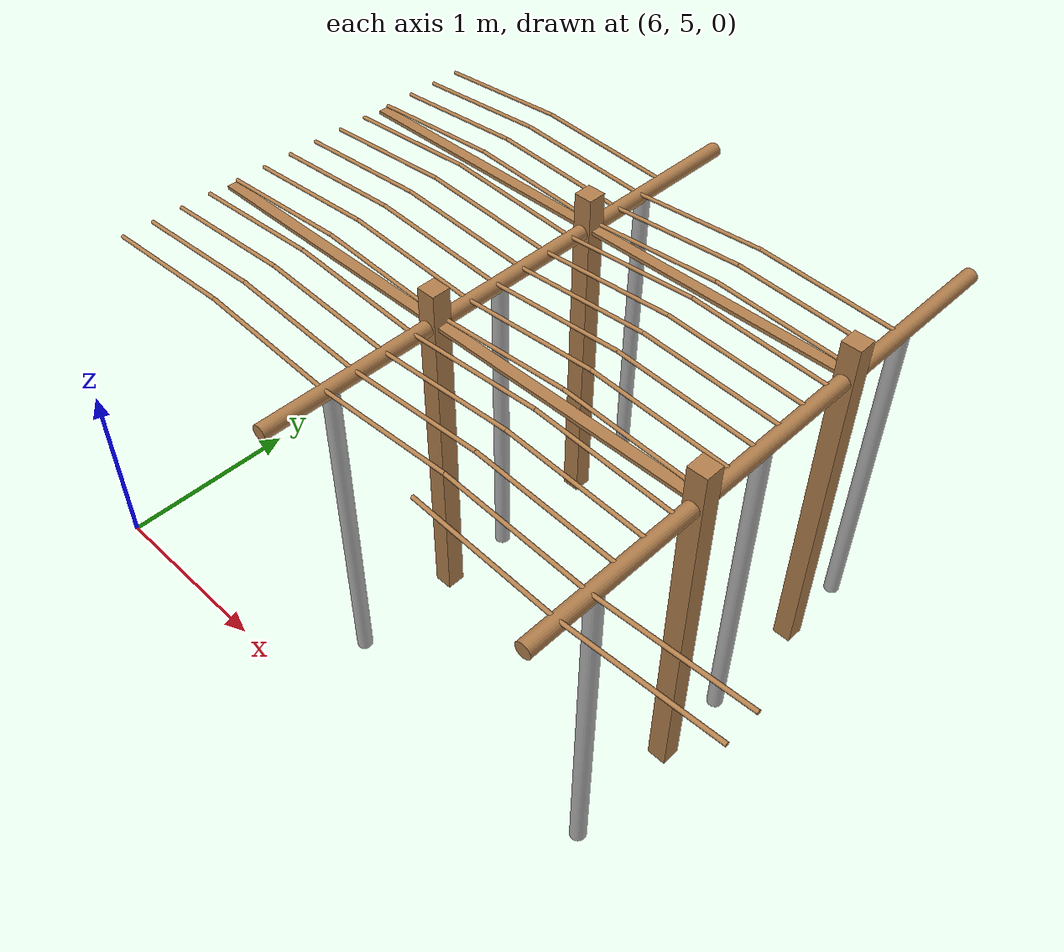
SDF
<sdf version="1.4">
 <model name="pergola">
  <include><name>post_61</name><pose>7.5 6.0 0 0 0 0</pose><uri>model://post</uri></include>
  <include><name>post_62</name><pose>7.5 7.0 0 0 0 0</pose><uri>model://post</uri></include>
  <include><name>post_72</name><pose>9.0 6.0 0 0 0 0</pose><uri>model://post</uri></include>
  <include><name>post_73</name><pose>9.0 7.0 0 0 0 0</pose><uri>model://post</uri></include>
  <link name="beam_50">
   <pose>6.75 6.0 1.81 0 0 0</pose>
   <collision name="collision"><geometry><box><size>1.5 0.06 0.02</size></box></geometry></collision>
   <visual name="visual">
    <geometry><box><size>1.5 0.06 0.02</size></box></geometry>
    <material><script><name>Gazebo/Wood</name></script></material>
   </visual>
   <inertial>
    <mass>5</mass>
    <inertia>
     <ixx>0.0016666666666666668</ixx>
     <ixy>0.0</ixy>
     <ixz>0.0</ixz>
     <iyy>0.9390000000000001</iyy>
     <iyz>0.0</iyz>
     <izz>0.9376666666666665</izz>
    </inertia>
   </inertial>
  </link>
  <link name="beam_51">
   <pose>6.75 7.0 1.81 0 0 0</pose>
   <collision name="collision"><geometry><box><size>1.5 0.06 0.02</size></box></geometry></collision>
   <visual name="visual">
    <geometry><box><size>1.5 0.06 0.02</size></box></geometry>
    <material><script><name>Gazebo/Wood</name></script></material>
   </visual>
   <inertial>
    <mass>5</mass>
    <inertia>
     <ixx>0.0016666666666666668</ixx>
     <ixy>0.0</ixy>
     <ixz>0.0</ixz>
     <iyy>0.9390000000000001</iyy>
     <iyz>0.0</iyz>
     <izz>0.9376666666666665</izz>
    </inertia>
   </inertial>
  </link>
  <link name="beam_61">
   <pose>8.25 6.0 1.81 0 0 0</pose>
   <collision name="collision"><geometry><box><size>1.5 0.06 0.02</size></box></geometry></collision>
   <visual name="visual">
    <geometry><box><size>1.5 0.06 0.02</size></box></geometry>
    <material><script><name>Gazebo/Wood</name></script></material>
   </visual>
   <inertial>
    <mass>5</mass>
    <inertia>
     <ixx>0.0016666666666666668</ixx>
     <ixy>0.0</ixy>
     <ixz>0.0</ixz>
     <iyy>0.9390000000000001</iyy>
     <iyz>0.0</iyz>
     <izz>0.9376666666666665</izz>
    </inertia>
   </inertial>
  </link>
  <link name="beam_62">
   <pose>8.25 7.0 1.81 0 0 0</pose>
   <collision name="collision"><geometry><box><size>1.5 0.06 0.02</size></box></geometry></collision>
   <visual name="visual">
    <geometry><box><size>1.5 0.06 0.02</size></box></geometry>
    <material><script><name>Gazebo/Wood</name></script></material>
   </visual>
   <inertial>
    <mass>5</mass>
    <inertia>
     <ixx>0.0016666666666666668</ixx>
     <ixy>0.0</ixy>
     <ixz>0.0</ixz>
     <iyy>0.9390000000000001</iyy>
     <iyz>0.0</iyz>
     <izz>0.9376666666666665</izz>
    </inertia>
   </inertial>
  </link>
  <include><name>tree_55</name><pose>7.5 5.4 0 0 0 0</pose><uri>model://tree_trunk</uri></include>
  <include><name>tree_56</name><pose>7.5 6.4 0 0 0 0</pose><uri>model://tree_trunk</uri></include>
  <include><name>tree_57</name><pose>7.5 7.4 0 0 0 0</pose><uri>model://tree_trunk</uri></include>
  <include><name>tree_65</name><pose>9.0 5.4 0 0 0 0</pose><uri>model://tree_trunk</uri></include>
  <include><name>tree_66</name><pose>9.0 6.4 0 0 0 0</pose><uri>model://tree_trunk</uri></include>
  <include><name>tree_67</name><pose>9.0 7.4 0 0 0 0</pose><uri>model://tree_trunk</uri></include>
  <link name="baseBranch_55">
   <pose>7.5 5.5 1.8 1.5707963267948966 0 0</pose>
   <collision name="collision">
    <geometry><cylinder><radius>0.04</radius><length>0.94</length></cylinder></geometry>
   </collision>
   <visual name="visual">
    <geometry><cylinder><radius>0.04</radius><length>0.94</length></cylinder></geometry>
    <material><script><name>Gazebo/WoodFloor</name></script></material>
   </visual>
   <inertial>
    <mass>10</mass>
    <inertia>
     <ixx>0.7403333333333334</ixx>
     <ixy>0.0</ixy>
     <ixz>0.0</ixz>
     <iyy>0.7403333333333334</iyy>
     <iyz>0.0</iyz>
     <izz>0.008</izz>
    </inertia>
   </inertial>
  </link>
  <link name="baseBranch_56">
   <pose>7.5 6.5 1.8 1.5707963267948966 0 0</pose>
   <collision name="collision">
    <geometry><cylinder><radius>0.04</radius><length>0.94</length></cylinder></geometry>
   </collision>
   <visual name="visual">
    <geometry><cylinder><radius>0.04</radius><length>0.94</length></cylinder></geometry>
    <material><script><name>Gazebo/WoodFloor</name></script></material>
   </visual>
   <inertial>
    <mass>10</mass>
    <inertia>
     <ixx>0.7403333333333334</ixx>
     <ixy>0.0</ixy>
     <ixz>0.0</ixz>
     <iyy>0.7403333333333334</iyy>
     <iyz>0.0</iyz>
     <izz>0.008</izz>
    </inertia>
   </inertial>
  </link>
  <link name="baseBranch_57">
   <pose>7.5 7.5 1.8 1.5707963267948966 0 0</pose>
   <collision name="collision">
    <geometry><cylinder><radius>0.04</radius><length>0.94</length></cylinder></geometry>
   </collision>
   <visual name="visual">
    <geometry><cylinder><radius>0.04</radius><length>0.94</length></cylinder></geometry>
    <material><script><name>Gazebo/WoodFloor</name></script></material>
   </visual>
   <inertial>
    <mass>10</mass>
    <inertia>
     <ixx>0.7403333333333334</ixx>
     <ixy>0.0</ixy>
     <ixz>0.0</ixz>
     <iyy>0.7403333333333334</iyy>
     <iyz>0.0</iyz>
     <izz>0.008</izz>
    </inertia>
   </inertial>
  </link>
  <link name="baseBranch_65">
   <pose>9.0 5.5 1.8 1.5707963267948966 0 0</pose>
   <collision name="collision">
    <geometry><cylinder><radius>0.04</radius><length>0.94</length></cylinder></geometry>
   </collision>
   <visual name="visual">
    <geometry><cylinder><radius>0.04</radius><length>0.94</length></cylinder></geometry>
    <material><script><name>Gazebo/WoodFloor</name></script></material>
   </visual>
   <inertial>
    <mass>10</mass>
    <inertia>
     <ixx>0.7403333333333334</ixx>
     <ixy>0.0</ixy>
     <ixz>0.0</ixz>
     <iyy>0.7403333333333334</iyy>
     <iyz>0.0</iyz>
     <izz>0.008</izz>
    </inertia>
   </inertial>
  </link>
  <link name="baseBranch_66">
   <pose>9.0 6.5 1.8 1.5707963267948966 0 0</pose>
   <collision name="collision">
    <geometry><cylinder><radius>0.04</radius><length>0.94</length></cylinder></geometry>
   </collision>
   <visual name="visual">
    <geometry><cylinder><radius>0.04</radius><length>0.94</length></cylinder></geometry>
    <material><script><name>Gazebo/WoodFloor</name></script></material>
   </visual>
   <inertial>
    <mass>10</mass>
    <inertia>
     <ixx>0.7403333333333334</ixx>
     <ixy>0.0</ixy>
     <ixz>0.0</ixz>
     <iyy>0.7403333333333334</iyy>
     <iyz>0.0</iyz>
     <izz>0.008</izz>
    </inertia>
   </inertial>
  </link>
  <link name="baseBranch_67">
   <pose>9.0 7.5 1.8 1.5707963267948966 0 0</pose>
   <collision name="collision">
    <geometry><cylinder><radius>0.04</radius><length>0.94</length></cylinder></geometry>
   </collision>
   <visual name="visual">
    <geometry><cylinder><radius>0.04</radius><length>0.94</length></cylinder></geometry>
    <material><script><name>Gazebo/WoodFloor</name></script></material>
   </visual>
   <inertial>
    <mass>10</mass>
    <inertia>
     <ixx>0.7403333333333334</ixx>
     <ixy>0.0</ixy>
     <ixz>0.0</ixz>
     <iyy>0.7403333333333334</iyy>
     <iyz>0.0</iyz>
     <izz>0.008</izz>
    </inertia>
   </inertial>
  </link>
  <link name="vine_544">
   <pose>6.375 5.363333333333333 1.85 0 1.5042281630190728 0</pose>
   <collision name="collision">
    <geometry><cylinder><radius>0.01</radius><length>0.7516648189186453</length></cylinder></geometry>
   </collision>
   <visual name="visual">
    <geometry><cylinder><radius>0.01</radius><length>0.7516648189186453</length></cylinder></geometry>
    <material><script><name>Gazebo/WoodFloor</name></script></material>
   </visual>
   <inertial>
    <mass>5</mass>
    <inertia>
     <ixx>0.23554166666666657</ixx>
     <ixy>0.0</ixy>
     <ixz>0.0</ixz>
     <iyy>0.23554166666666657</iyy>
     <iyz>0.0</iyz>
     <izz>0.00025</izz>
    </inertia>
   </inertial>
  </link>
  <link name="vine_545">
   <pose>7.125 5.363333333333333 1.85 0 -1.5042281630190728 0</pose>
   <collision name="collision">
    <geometry><cylinder><radius>0.01</radius><length>0.7516648189186453</length></cylinder></geometry>
   </collision>
   <visual name="visual">
    <geometry><cylinder><radius>0.01</radius><length>0.7516648189186453</length></cylinder></geometry>
    <material><script><name>Gazebo/WoodFloor</name></script></material>
   </visual>
   <inertial>
    <mass>5</mass>
    <inertia>
     <ixx>0.23554166666666657</ixx>
     <ixy>0.0</ixy>
     <ixz>0.0</ixz>
     <iyy>0.23554166666666657</iyy>
     <iyz>0.0</iyz>
     <izz>0.00025</izz>
    </inertia>
   </inertial>
  </link>
  <link name="vine_546">
   <pose>6.375 5.53 1.85 0 1.5042281630190728 0</pose>
   <collision name="collision">
    <geometry><cylinder><radius>0.01</radius><length>0.7516648189186453</length></cylinder></geometry>
   </collision>
   <visual name="visual">
    <geometry><cylinder><radius>0.01</radius><length>0.7516648189186453</length></cylinder></geometry>
    <material><script><name>Gazebo/WoodFloor</name></script></material>
   </visual>
   <inertial>
    <mass>5</mass>
    <inertia>
     <ixx>0.23554166666666657</ixx>
     <ixy>0.0</ixy>
     <ixz>0.0</ixz>
     <iyy>0.23554166666666657</iyy>
     <iyz>0.0</iyz>
     <izz>0.00025</izz>
    </inertia>
   </inertial>
  </link>
  <link name="vine_547">
   <pose>7.125 5.53 1.85 0 -1.5042281630190728 0</pose>
   <collision name="collision">
    <geometry><cylinder><radius>0.01</radius><length>0.7516648189186453</length></cylinder></geometry>
   </collision>
   <visual name="visual">
    <geometry><cylinder><radius>0.01</radius><length>0.7516648189186453</length></cylinder></geometry>
    <material><script><name>Gazebo/WoodFloor</name></script></material>
   </visual>
   <inertial>
    <mass>5</mass>
    <inertia>
     <ixx>0.23554166666666657</ixx>
     <ixy>0.0</ixy>
     <ixz>0.0</ixz>
     <iyy>0.23554166666666657</iyy>
     <iyz>0.0</iyz>
     <izz>0.00025</izz>
    </inertia>
   </inertial>
  </link>
  <link name="vine_548">
   <pose>6.375 5.696666666666666 1.85 0 1.5042281630190728 0</pose>
   <collision name="collision">
    <geometry><cylinder><radius>0.01</radius><length>0.7516648189186453</length></cylinder></geometry>
   </collision>
   <visual name="visual">
    <geometry><cylinder><radius>0.01</radius><length>0.7516648189186453</length></cylinder></geometry>
    <material><script><name>Gazebo/WoodFloor</name></script></material>
   </visual>
   <inertial>
    <mass>5</mass>
    <inertia>
     <ixx>0.23554166666666657</ixx>
     <ixy>0.0</ixy>
     <ixz>0.0</ixz>
     <iyy>0.23554166666666657</iyy>
     <iyz>0.0</iyz>
     <izz>0.00025</izz>
    </inertia>
   </inertial>
  </link>
  <link name="vine_549">
   <pose>7.125 5.696666666666666 1.85 0 -1.5042281630190728 0</pose>
   <collision name="collision">
    <geometry><cylinder><radius>0.01</radius><length>0.7516648189186453</length></cylinder></geometry>
   </collision>
   <visual name="visual">
    <geometry><cylinder><radius>0.01</radius><length>0.7516648189186453</length></cylinder></geometry>
    <material><script><name>Gazebo/WoodFloor</name></script></material>
   </visual>
   <inertial>
    <mass>5</mass>
    <inertia>
     <ixx>0.23554166666666657</ixx>
     <ixy>0.0</ixy>
     <ixz>0.0</ixz>
     <iyy>0.23554166666666657</iyy>
     <iyz>0.0</iyz>
     <izz>0.00025</izz>
    </inertia>
   </inertial>
  </link>
  <link name="vine_550">
   <pose>6.375 5.863333333333333 1.85 0 1.5042281630190728 0</pose>
   <collision name="collision">
    <geometry><cylinder><radius>0.01</radius><length>0.7516648189186453</length></cylinder></geometry>
   </collision>
   <visual name="visual">
    <geometry><cylinder><radius>0.01</radius><length>0.7516648189186453</length></cylinder></geometry>
    <material><script><name>Gazebo/WoodFloor</name></script></material>
   </visual>
   <inertial>
    <mass>5</mass>
    <inertia>
     <ixx>0.23554166666666657</ixx>
     <ixy>0.0</ixy>
     <ixz>0.0</ixz>
     <iyy>0.23554166666666657</iyy>
     <iyz>0.0</iyz>
     <izz>0.00025</izz>
    </inertia>
   </inertial>
  </link>
  <link name="vine_551">
   <pose>7.125 5.863333333333333 1.85 0 -1.5042281630190728 0</pose>
   <collision name="collision">
    <geometry><cylinder><radius>0.01</radius><length>0.7516648189186453</length></cylinder></geometry>
   </collision>
   <visual name="visual">
    <geometry><cylinder><radius>0.01</radius><length>0.7516648189186453</length></cylinder></geometry>
    <material><script><name>Gazebo/WoodFloor</name></script></material>
   </visual>
   <inertial>
    <mass>5</mass>
    <inertia>
     <ixx>0.23554166666666657</ixx>
     <ixy>0.0</ixy>
     <ixz>0.0</ixz>
     <iyy>0.23554166666666657</iyy>
     <iyz>0.0</iyz>
     <izz>0.00025</izz>
    </inertia>
   </inertial>
  </link>
  <link name="vine_552">
   <pose>6.375 6.03 1.85 0 1.5042281630190728 0</pose>
   <collision name="collision">
    <geometry><cylinder><radius>0.01</radius><length>0.7516648189186453</length></cylinder></geometry>
   </collision>
   <visual name="visual">
    <geometry><cylinder><radius>0.01</radius><length>0.7516648189186453</length></cylinder></geometry>
    <material><script><name>Gazebo/WoodFloor</name></script></material>
   </visual>
   <inertial>
    <mass>5</mass>
    <inertia>
     <ixx>0.23554166666666657</ixx>
     <ixy>0.0</ixy>
     <ixz>0.0</ixz>
     <iyy>0.23554166666666657</iyy>
     <iyz>0.0</iyz>
     <izz>0.00025</izz>
    </inertia>
   </inertial>
  </link>
  <link name="vine_553">
   <pose>7.125 6.03 1.85 0 -1.5042281630190728 0</pose>
   <collision name="collision">
    <geometry><cylinder><radius>0.01</radius><length>0.7516648189186453</length></cylinder></geometry>
   </collision>
   <visual name="visual">
    <geometry><cylinder><radius>0.01</radius><length>0.7516648189186453</length></cylinder></geometry>
    <material><script><name>Gazebo/WoodFloor</name></script></material>
   </visual>
   <inertial>
    <mass>5</mass>
    <inertia>
     <ixx>0.23554166666666657</ixx>
     <ixy>0.0</ixy>
     <ixz>0.0</ixz>
     <iyy>0.23554166666666657</iyy>
     <iyz>0.0</iyz>
     <izz>0.00025</izz>
    </inertia>
   </inertial>
  </link>
  <link name="vine_554">
   <pose>6.375 6.196666666666666 1.85 0 1.5042281630190728 0</pose>
   <collision name="collision">
    <geometry><cylinder><radius>0.01</radius><length>0.7516648189186453</length></cylinder></geometry>
   </collision>
   <visual name="visual">
    <geometry><cylinder><radius>0.01</radius><length>0.7516648189186453</length></cylinder></geometry>
    <material><script><name>Gazebo/WoodFloor</name></script></material>
   </visual>
   <inertial>
    <mass>5</mass>
    <inertia>
     <ixx>0.23554166666666657</ixx>
     <ixy>0.0</ixy>
     <ixz>0.0</ixz>
     <iyy>0.23554166666666657</iyy>
     <iyz>0.0</iyz>
     <izz>0.00025</izz>
    </inertia>
   </inertial>
  </link>
  <link name="vine_555">
   <pose>7.125 6.196666666666666 1.85 0 -1.5042281630190728 0</pose>
   <collision name="collision">
    <geometry><cylinder><radius>0.01</radius><length>0.7516648189186453</length></cylinder></geometry>
   </collision>
   <visual name="visual">
    <geometry><cylinder><radius>0.01</radius><length>0.7516648189186453</length></cylinder></geometry>
    <material><script><name>Gazebo/WoodFloor</name></script></material>
   </visual>
   <inertial>
    <mass>5</mass>
    <inertia>
     <ixx>0.23554166666666657</ixx>
     <ixy>0.0</ixy>
     <ixz>0.0</ixz>
     <iyy>0.23554166666666657</iyy>
     <iyz>0.0</iyz>
     <izz>0.00025</izz>
    </inertia>
   </inertial>
  </link>
  <link name="vine_556">
   <pose>6.375 6.363333333333333 1.85 0 1.5042281630190728 0</pose>
   <collision name="collision">
    <geometry><cylinder><radius>0.01</radius><length>0.7516648189186453</length></cylinder></geometry>
   </collision>
   <visual name="visual">
    <geometry><cylinder><radius>0.01</radius><length>0.7516648189186453</length></cylinder></geometry>
    <material><script><name>Gazebo/WoodFloor</name></script></material>
   </visual>
   <inertial>
    <mass>5</mass>
    <inertia>
     <ixx>0.23554166666666657</ixx>
     <ixy>0.0</ixy>
     <ixz>0.0</ixz>
     <iyy>0.23554166666666657</iyy>
     <iyz>0.0</iyz>
     <izz>0.00025</izz>
    </inertia>
   </inertial>
  </link>
  <link name="vine_557">
   <pose>7.125 6.363333333333333 1.85 0 -1.5042281630190728 0</pose>
   <collision name="collision">
    <geometry><cylinder><radius>0.01</radius><length>0.7516648189186453</length></cylinder></geometry>
   </collision>
   <visual name="visual">
    <geometry><cylinder><radius>0.01</radius><length>0.7516648189186453</length></cylinder></geometry>
    <material><script><name>Gazebo/WoodFloor</name></script></material>
   </visual>
   <inertial>
    <mass>5</mass>
    <inertia>
     <ixx>0.23554166666666657</ixx>
     <ixy>0.0</ixy>
     <ixz>0.0</ixz>
     <iyy>0.23554166666666657</iyy>
     <iyz>0.0</iyz>
     <izz>0.00025</izz>
    </inertia>
   </inertial>
  </link>
  <link name="vine_558">
   <pose>6.375 6.53 1.85 0 1.5042281630190728 0</pose>
   <collision name="collision">
    <geometry><cylinder><radius>0.01</radius><length>0.7516648189186453</length></cylinder></geometry>
   </collision>
   <visual name="visual">
    <geometry><cylinder><radius>0.01</radius><length>0.7516648189186453</length></cylinder></geometry>
    <material><script><name>Gazebo/WoodFloor</name></script></material>
   </visual>
   <inertial>
    <mass>5</mass>
    <inertia>
     <ixx>0.23554166666666657</ixx>
     <ixy>0.0</ixy>
     <ixz>0.0</ixz>
     <iyy>0.23554166666666657</iyy>
     <iyz>0.0</iyz>
     <izz>0.00025</izz>
    </inertia>
   </inertial>
  </link>
  <link name="vine_559">
   <pose>7.125 6.53 1.85 0 -1.5042281630190728 0</pose>
   <collision name="collision">
    <geometry><cylinder><radius>0.01</radius><length>0.7516648189186453</length></cylinder></geometry>
   </collision>
   <visual name="visual">
    <geometry><cylinder><radius>0.01</radius><length>0.7516648189186453</length></cylinder></geometry>
    <material><script><name>Gazebo/WoodFloor</name></script></material>
   </visual>
   <inertial>
    <mass>5</mass>
    <inertia>
     <ixx>0.23554166666666657</ixx>
     <ixy>0.0</ixy>
     <ixz>0.0</ixz>
     <iyy>0.23554166666666657</iyy>
     <iyz>0.0</iyz>
     <izz>0.00025</izz>
    </inertia>
   </inertial>
  </link>
  <link name="vine_560">
   <pose>6.375 6.696666666666666 1.85 0 1.5042281630190728 0</pose>
   <collision name="collision">
    <geometry><cylinder><radius>0.01</radius><length>0.7516648189186453</length></cylinder></geometry>
   </collision>
   <visual name="visual">
    <geometry><cylinder><radius>0.01</radius><length>0.7516648189186453</length></cylinder></geometry>
    <material><script><name>Gazebo/WoodFloor</name></script></material>
   </visual>
   <inertial>
    <mass>5</mass>
    <inertia>
     <ixx>0.23554166666666657</ixx>
     <ixy>0.0</ixy>
     <ixz>0.0</ixz>
     <iyy>0.23554166666666657</iyy>
     <iyz>0.0</iyz>
     <izz>0.00025</izz>
    </inertia>
   </inertial>
  </link>
  <link name="vine_561">
   <pose>7.125 6.696666666666666 1.85 0 -1.5042281630190728 0</pose>
   <collision name="collision">
    <geometry><cylinder><radius>0.01</radius><length>0.7516648189186453</length></cylinder></geometry>
   </collision>
   <visual name="visual">
    <geometry><cylinder><radius>0.01</radius><length>0.7516648189186453</length></cylinder></geometry>
    <material><script><name>Gazebo/WoodFloor</name></script></material>
   </visual>
   <inertial>
    <mass>5</mass>
    <inertia>
     <ixx>0.23554166666666657</ixx>
     <ixy>0.0</ixy>
     <ixz>0.0</ixz>
     <iyy>0.23554166666666657</iyy>
     <iyz>0.0</iyz>
     <izz>0.00025</izz>
    </inertia>
   </inertial>
  </link>
  <link name="vine_562">
   <pose>6.375 6.863333333333333 1.85 0 1.5042281630190728 0</pose>
   <collision name="collision">
    <geometry><cylinder><radius>0.01</radius><length>0.7516648189186453</length></cylinder></geometry>
   </collision>
   <visual name="visual">
    <geometry><cylinder><radius>0.01</radius><length>0.7516648189186453</length></cylinder></geometry>
    <material><script><name>Gazebo/WoodFloor</name></script></material>
   </visual>
   <inertial>
    <mass>5</mass>
    <inertia>
     <ixx>0.23554166666666657</ixx>
     <ixy>0.0</ixy>
     <ixz>0.0</ixz>
     <iyy>0.23554166666666657</iyy>
     <iyz>0.0</iyz>
     <izz>0.00025</izz>
    </inertia>
   </inertial>
  </link>
  <link name="vine_563">
   <pose>7.125 6.863333333333333 1.85 0 -1.5042281630190728 0</pose>
   <collision name="collision">
    <geometry><cylinder><radius>0.01</radius><length>0.7516648189186453</length></cylinder></geometry>
   </collision>
   <visual name="visual">
    <geometry><cylinder><radius>0.01</radius><length>0.7516648189186453</length></cylinder></geometry>
    <material><script><name>Gazebo/WoodFloor</name></script></material>
   </visual>
   <inertial>
    <mass>5</mass>
    <inertia>
     <ixx>0.23554166666666657</ixx>
     <ixy>0.0</ixy>
     <ixz>0.0</ixz>
     <iyy>0.23554166666666657</iyy>
     <iyz>0.0</iyz>
     <izz>0.00025</izz>
    </inertia>
   </inertial>
  </link>
  <link name="vine_564">
   <pose>6.375 7.03 1.85 0 1.5042281630190728 0</pose>
   <collision name="collision">
    <geometry><cylinder><radius>0.01</radius><length>0.7516648189186453</length></cylinder></geometry>
   </collision>
   <visual name="visual">
    <geometry><cylinder><radius>0.01</radius><length>0.7516648189186453</length></cylinder></geometry>
    <material><script><name>Gazebo/WoodFloor</name></script></material>
   </visual>
   <inertial>
    <mass>5</mass>
    <inertia>
     <ixx>0.23554166666666657</ixx>
     <ixy>0.0</ixy>
     <ixz>0.0</ixz>
     <iyy>0.23554166666666657</iyy>
     <iyz>0.0</iyz>
     <izz>0.00025</izz>
    </inertia>
   </inertial>
  </link>
  <link name="vine_565">
   <pose>7.125 7.03 1.85 0 -1.5042281630190728 0</pose>
   <collision name="collision">
    <geometry><cylinder><radius>0.01</radius><length>0.7516648189186453</length></cylinder></geometry>
   </collision>
   <visual name="visual">
    <geometry><cylinder><radius>0.01</radius><length>0.7516648189186453</length></cylinder></geometry>
    <material><script><name>Gazebo/WoodFloor</name></script></material>
   </visual>
   <inertial>
    <mass>5</mass>
    <inertia>
     <ixx>0.23554166666666657</ixx>
     <ixy>0.0</ixy>
     <ixz>0.0</ixz>
     <iyy>0.23554166666666657</iyy>
     <iyz>0.0</iyz>
     <izz>0.00025</izz>
    </inertia>
   </inertial>
  </link>
  <link name="vine_566">
   <pose>6.375 7.196666666666666 1.85 0 1.5042281630190728 0</pose>
   <collision name="collision">
    <geometry><cylinder><radius>0.01</radius><length>0.7516648189186453</length></cylinder></geometry>
   </collision>
   <visual name="visual">
    <geometry><cylinder><radius>0.01</radius><length>0.7516648189186453</length></cylinder></geometry>
    <material><script><name>Gazebo/WoodFloor</name></script></material>
   </visual>
   <inertial>
    <mass>5</mass>
    <inertia>
     <ixx>0.23554166666666657</ixx>
     <ixy>0.0</ixy>
     <ixz>0.0</ixz>
     <iyy>0.23554166666666657</iyy>
     <iyz>0.0</iyz>
     <izz>0.00025</izz>
    </inertia>
   </inertial>
  </link>
  <link name="vine_567">
   <pose>7.125 7.196666666666666 1.85 0 -1.5042281630190728 0</pose>
   <collision name="collision">
    <geometry><cylinder><radius>0.01</radius><length>0.7516648189186453</length></cylinder></geometry>
   </collision>
   <visual name="visual">
    <geometry><cylinder><radius>0.01</radius><length>0.7516648189186453</length></cylinder></geometry>
    <material><script><name>Gazebo/WoodFloor</name></script></material>
   </visual>
   <inertial>
    <mass>5</mass>
    <inertia>
     <ixx>0.23554166666666657</ixx>
     <ixy>0.0</ixy>
     <ixz>0.0</ixz>
     <iyy>0.23554166666666657</iyy>
     <iyz>0.0</iyz>
     <izz>0.00025</izz>
    </inertia>
   </inertial>
  </link>
  <link name="vine_568">
   <pose>6.375 7.363333333333333 1.85 0 1.5042281630190728 0</pose>
   <collision name="collision">
    <geometry><cylinder><radius>0.01</radius><length>0.7516648189186453</length></cylinder></geometry>
   </collision>
   <visual name="visual">
    <geometry><cylinder><radius>0.01</radius><length>0.7516648189186453</length></cylinder></geometry>
    <material><script><name>Gazebo/WoodFloor</name></script></material>
   </visual>
   <inertial>
    <mass>5</mass>
    <inertia>
     <ixx>0.23554166666666657</ixx>
     <ixy>0.0</ixy>
     <ixz>0.0</ixz>
     <iyy>0.23554166666666657</iyy>
     <iyz>0.0</iyz>
     <izz>0.00025</izz>
    </inertia>
   </inertial>
  </link>
  <link name="vine_569">
   <pose>7.125 7.363333333333333 1.85 0 -1.5042281630190728 0</pose>
   <collision name="collision">
    <geometry><cylinder><radius>0.01</radius><length>0.7516648189186453</length></cylinder></geometry>
   </collision>
   <visual name="visual">
    <geometry><cylinder><radius>0.01</radius><length>0.7516648189186453</length></cylinder></geometry>
    <material><script><name>Gazebo/WoodFloor</name></script></material>
   </visual>
   <inertial>
    <mass>5</mass>
    <inertia>
     <ixx>0.23554166666666657</ixx>
     <ixy>0.0</ixy>
     <ixz>0.0</ixz>
     <iyy>0.23554166666666657</iyy>
     <iyz>0.0</iyz>
     <izz>0.00025</izz>
    </inertia>
   </inertial>
  </link>
  <link name="vine_570">
   <pose>6.375 7.53 1.85 0 1.5042281630190728 0</pose>
   <collision name="collision">
    <geometry><cylinder><radius>0.01</radius><length>0.7516648189186453</length></cylinder></geometry>
   </collision>
   <visual name="visual">
    <geometry><cylinder><radius>0.01</radius><length>0.7516648189186453</length></cylinder></geometry>
    <material><script><name>Gazebo/WoodFloor</name></script></material>
   </visual>
   <inertial>
    <mass>5</mass>
    <inertia>
     <ixx>0.23554166666666657</ixx>
     <ixy>0.0</ixy>
     <ixz>0.0</ixz>
     <iyy>0.23554166666666657</iyy>
     <iyz>0.0</iyz>
     <izz>0.00025</izz>
    </inertia>
   </inertial>
  </link>
  <link name="vine_571">
   <pose>7.125 7.53 1.85 0 -1.5042281630190728 0</pose>
   <collision name="collision">
    <geometry><cylinder><radius>0.01</radius><length>0.7516648189186453</length></cylinder></geometry>
   </collision>
   <visual name="visual">
    <geometry><cylinder><radius>0.01</radius><length>0.7516648189186453</length></cylinder></geometry>
    <material><script><name>Gazebo/WoodFloor</name></script></material>
   </visual>
   <inertial>
    <mass>5</mass>
    <inertia>
     <ixx>0.23554166666666657</ixx>
     <ixy>0.0</ixy>
     <ixz>0.0</ixz>
     <iyy>0.23554166666666657</iyy>
     <iyz>0.0</iyz>
     <izz>0.00025</izz>
    </inertia>
   </inertial>
  </link>
  <link name="vine_663">
   <pose>8.625 5.196666666666666 1.85 0 -1.5042281630190728 0</pose>
   <collision name="collision">
    <geometry><cylinder><radius>0.01</radius><length>0.7516648189186453</length></cylinder></geometry>
   </collision>
   <visual name="visual">
    <geometry><cylinder><radius>0.01</radius><length>0.7516648189186453</length></cylinder></geometry>
    <material><script><name>Gazebo/WoodFloor</name></script></material>
   </visual>
   <inertial>
    <mass>5</mass>
    <inertia>
     <ixx>0.23554166666666657</ixx>
     <ixy>0.0</ixy>
     <ixz>0.0</ixz>
     <iyy>0.23554166666666657</iyy>
     <iyz>0.0</iyz>
     <izz>0.00025</izz>
    </inertia>
   </inertial>
  </link>
  <link name="vine_664">
   <pose>7.875 5.363333333333333 1.85 0 1.5042281630190728 0</pose>
   <collision name="collision">
    <geometry><cylinder><radius>0.01</radius><length>0.7516648189186453</length></cylinder></geometry>
   </collision>
   <visual name="visual">
    <geometry><cylinder><radius>0.01</radius><length>0.7516648189186453</length></cylinder></geometry>
    <material><script><name>Gazebo/WoodFloor</name></script></material>
   </visual>
   <inertial>
    <mass>5</mass>
    <inertia>
     <ixx>0.23554166666666657</ixx>
     <ixy>0.0</ixy>
     <ixz>0.0</ixz>
     <iyy>0.23554166666666657</iyy>
     <iyz>0.0</iyz>
     <izz>0.00025</izz>
    </inertia>
   </inertial>
  </link>
  <link name="vine_665">
   <pose>8.625 5.363333333333333 1.85 0 -1.5042281630190728 0</pose>
   <collision name="collision">
    <geometry><cylinder><radius>0.01</radius><length>0.7516648189186453</length></cylinder></geometry>
   </collision>
   <visual name="visual">
    <geometry><cylinder><radius>0.01</radius><length>0.7516648189186453</length></cylinder></geometry>
    <material><script><name>Gazebo/WoodFloor</name></script></material>
   </visual>
   <inertial>
    <mass>5</mass>
    <inertia>
     <ixx>0.23554166666666657</ixx>
     <ixy>0.0</ixy>
     <ixz>0.0</ixz>
     <iyy>0.23554166666666657</iyy>
     <iyz>0.0</iyz>
     <izz>0.00025</izz>
    </inertia>
   </inertial>
  </link>
  <link name="vine_666">
   <pose>7.875 5.53 1.85 0 1.5042281630190728 0</pose>
   <collision name="collision">
    <geometry><cylinder><radius>0.01</radius><length>0.7516648189186453</length></cylinder></geometry>
   </collision>
   <visual name="visual">
    <geometry><cylinder><radius>0.01</radius><length>0.7516648189186453</length></cylinder></geometry>
    <material><script><name>Gazebo/WoodFloor</name></script></material>
   </visual>
   <inertial>
    <mass>5</mass>
    <inertia>
     <ixx>0.23554166666666657</ixx>
     <ixy>0.0</ixy>
     <ixz>0.0</ixz>
     <iyy>0.23554166666666657</iyy>
     <iyz>0.0</iyz>
     <izz>0.00025</izz>
    </inertia>
   </inertial>
  </link>
  <link name="vine_667">
   <pose>8.625 5.53 1.85 0 -1.5042281630190728 0</pose>
   <collision name="collision">
    <geometry><cylinder><radius>0.01</radius><length>0.7516648189186453</length></cylinder></geometry>
   </collision>
   <visual name="visual">
    <geometry><cylinder><radius>0.01</radius><length>0.7516648189186453</length></cylinder></geometry>
    <material><script><name>Gazebo/WoodFloor</name></script></material>
   </visual>
   <inertial>
    <mass>5</mass>
    <inertia>
     <ixx>0.23554166666666657</ixx>
     <ixy>0.0</ixy>
     <ixz>0.0</ixz>
     <iyy>0.23554166666666657</iyy>
     <iyz>0.0</iyz>
     <izz>0.00025</izz>
    </inertia>
   </inertial>
  </link>
  <link name="vine_668">
   <pose>7.875 5.696666666666666 1.85 0 1.5042281630190728 0</pose>
   <collision name="collision">
    <geometry><cylinder><radius>0.01</radius><length>0.7516648189186453</length></cylinder></geometry>
   </collision>
   <visual name="visual">
    <geometry><cylinder><radius>0.01</radius><length>0.7516648189186453</length></cylinder></geometry>
    <material><script><name>Gazebo/WoodFloor</name></script></material>
   </visual>
   <inertial>
    <mass>5</mass>
    <inertia>
     <ixx>0.23554166666666657</ixx>
     <ixy>0.0</ixy>
     <ixz>0.0</ixz>
     <iyy>0.23554166666666657</iyy>
     <iyz>0.0</iyz>
     <izz>0.00025</izz>
    </inertia>
   </inertial>
  </link>
  <link name="vine_669">
   <pose>8.625 5.696666666666666 1.85 0 -1.5042281630190728 0</pose>
   <collision name="collision">
    <geometry><cylinder><radius>0.01</radius><length>0.7516648189186453</length></cylinder></geometry>
   </collision>
   <visual name="visual">
    <geometry><cylinder><radius>0.01</radius><length>0.7516648189186453</length></cylinder></geometry>
    <material><script><name>Gazebo/WoodFloor</name></script></material>
   </visual>
   <inertial>
    <mass>5</mass>
    <inertia>
     <ixx>0.23554166666666657</ixx>
     <ixy>0.0</ixy>
     <ixz>0.0</ixz>
     <iyy>0.23554166666666657</iyy>
     <iyz>0.0</iyz>
     <izz>0.00025</izz>
    </inertia>
   </inertial>
  </link>
  <link name="vine_670">
   <pose>7.875 5.863333333333333 1.85 0 1.5042281630190728 0</pose>
   <collision name="collision">
    <geometry><cylinder><radius>0.01</radius><length>0.7516648189186453</length></cylinder></geometry>
   </collision>
   <visual name="visual">
    <geometry><cylinder><radius>0.01</radius><length>0.7516648189186453</length></cylinder></geometry>
    <material><script><name>Gazebo/WoodFloor</name></script></material>
   </visual>
   <inertial>
    <mass>5</mass>
    <inertia>
     <ixx>0.23554166666666657</ixx>
     <ixy>0.0</ixy>
     <ixz>0.0</ixz>
     <iyy>0.23554166666666657</iyy>
     <iyz>0.0</iyz>
     <izz>0.00025</izz>
    </inertia>
   </inertial>
  </link>
  <link name="vine_671">
   <pose>8.625 5.863333333333333 1.85 0 -1.5042281630190728 0</pose>
   <collision name="collision">
    <geometry><cylinder><radius>0.01</radius><length>0.7516648189186453</length></cylinder></geometry>
   </collision>
   <visual name="visual">
    <geometry><cylinder><radius>0.01</radius><length>0.7516648189186453</length></cylinder></geometry>
    <material><script><name>Gazebo/WoodFloor</name></script></material>
   </visual>
   <inertial>
    <mass>5</mass>
    <inertia>
     <ixx>0.23554166666666657</ixx>
     <ixy>0.0</ixy>
     <ixz>0.0</ixz>
     <iyy>0.23554166666666657</iyy>
     <iyz>0.0</iyz>
     <izz>0.00025</izz>
    </inertia>
   </inertial>
  </link>
  <link name="vine_672">
   <pose>7.875 6.03 1.85 0 1.5042281630190728 0</pose>
   <collision name="collision">
    <geometry><cylinder><radius>0.01</radius><length>0.7516648189186453</length></cylinder></geometry>
   </collision>
   <visual name="visual">
    <geometry><cylinder><radius>0.01</radius><length>0.7516648189186453</length></cylinder></geometry>
    <material><script><name>Gazebo/WoodFloor</name></script></material>
   </visual>
   <inertial>
    <mass>5</mass>
    <inertia>
     <ixx>0.23554166666666657</ixx>
     <ixy>0.0</ixy>
     <ixz>0.0</ixz>
     <iyy>0.23554166666666657</iyy>
     <iyz>0.0</iyz>
     <izz>0.00025</izz>
    </inertia>
   </inertial>
  </link>
  <link name="vine_673">
   <pose>8.625 6.03 1.85 0 -1.5042281630190728 0</pose>
   <collision name="collision">
    <geometry><cylinder><radius>0.01</radius><length>0.7516648189186453</length></cylinder></geometry>
   </collision>
   <visual name="visual">
    <geometry><cylinder><radius>0.01</radius><length>0.7516648189186453</length></cylinder></geometry>
    <material><script><name>Gazebo/WoodFloor</name></script></material>
   </visual>
   <inertial>
    <mass>5</mass>
    <inertia>
     <ixx>0.23554166666666657</ixx>
     <ixy>0.0</ixy>
     <ixz>0.0</ixz>
     <iyy>0.23554166666666657</iyy>
     <iyz>0.0</iyz>
     <izz>0.00025</izz>
    </inertia>
   </inertial>
  </link>
  <link name="vine_674">
   <pose>7.875 6.196666666666666 1.85 0 1.5042281630190728 0</pose>
   <collision name="collision">
    <geometry><cylinder><radius>0.01</radius><length>0.7516648189186453</length></cylinder></geometry>
   </collision>
   <visual name="visual">
    <geometry><cylinder><radius>0.01</radius><length>0.7516648189186453</length></cylinder></geometry>
    <material><script><name>Gazebo/WoodFloor</name></script></material>
   </visual>
   <inertial>
    <mass>5</mass>
    <inertia>
     <ixx>0.23554166666666657</ixx>
     <ixy>0.0</ixy>
     <ixz>0.0</ixz>
     <iyy>0.23554166666666657</iyy>
     <iyz>0.0</iyz>
     <izz>0.00025</izz>
    </inertia>
   </inertial>
  </link>
  <link name="vine_675">
   <pose>8.625 6.196666666666666 1.85 0 -1.5042281630190728 0</pose>
   <collision name="collision">
    <geometry><cylinder><radius>0.01</radius><length>0.7516648189186453</length></cylinder></geometry>
   </collision>
   <visual name="visual">
    <geometry><cylinder><radius>0.01</radius><length>0.7516648189186453</length></cylinder></geometry>
    <material><script><name>Gazebo/WoodFloor</name></script></material>
   </visual>
   <inertial>
    <mass>5</mass>
    <inertia>
     <ixx>0.23554166666666657</ixx>
     <ixy>0.0</ixy>
     <ixz>0.0</ixz>
     <iyy>0.23554166666666657</iyy>
     <iyz>0.0</iyz>
     <izz>0.00025</izz>
    </inertia>
   </inertial>
  </link>
  <link name="vine_676">
   <pose>7.875 6.363333333333333 1.85 0 1.5042281630190728 0</pose>
   <collision name="collision">
    <geometry><cylinder><radius>0.01</radius><length>0.7516648189186453</length></cylinder></geometry>
   </collision>
   <visual name="visual">
    <geometry><cylinder><radius>0.01</radius><length>0.7516648189186453</length></cylinder></geometry>
    <material><script><name>Gazebo/WoodFloor</name></script></material>
   </visual>
   <inertial>
    <mass>5</mass>
    <inertia>
     <ixx>0.23554166666666657</ixx>
     <ixy>0.0</ixy>
     <ixz>0.0</ixz>
     <iyy>0.23554166666666657</iyy>
     <iyz>0.0</iyz>
     <izz>0.00025</izz>
    </inertia>
   </inertial>
  </link>
  <link name="vine_677">
   <pose>8.625 6.363333333333333 1.85 0 -1.5042281630190728 0</pose>
   <collision name="collision">
    <geometry><cylinder><radius>0.01</radius><length>0.7516648189186453</length></cylinder></geometry>
   </collision>
   <visual name="visual">
    <geometry><cylinder><radius>0.01</radius><length>0.7516648189186453</length></cylinder></geometry>
    <material><script><name>Gazebo/WoodFloor</name></script></material>
   </visual>
   <inertial>
    <mass>5</mass>
    <inertia>
     <ixx>0.23554166666666657</ixx>
     <ixy>0.0</ixy>
     <ixz>0.0</ixz>
     <iyy>0.23554166666666657</iyy>
     <iyz>0.0</iyz>
     <izz>0.00025</izz>
    </inertia>
   </inertial>
  </link>
  <link name="vine_678">
   <pose>7.875 6.53 1.85 0 1.5042281630190728 0</pose>
   <collision name="collision">
    <geometry><cylinder><radius>0.01</radius><length>0.7516648189186453</length></cylinder></geometry>
   </collision>
   <visual name="visual">
    <geometry><cylinder><radius>0.01</radius><length>0.7516648189186453</length></cylinder></geometry>
    <material><script><name>Gazebo/WoodFloor</name></script></material>
   </visual>
   <inertial>
    <mass>5</mass>
    <inertia>
     <ixx>0.23554166666666657</ixx>
     <ixy>0.0</ixy>
     <ixz>0.0</ixz>
     <iyy>0.23554166666666657</iyy>
     <iyz>0.0</iyz>
     <izz>0.00025</izz>
    </inertia>
   </inertial>
  </link>
  <link name="vine_679">
   <pose>8.625 6.53 1.85 0 -1.5042281630190728 0</pose>
   <collision name="collision">
    <geometry><cylinder><radius>0.01</radius><length>0.7516648189186453</length></cylinder></geometry>
   </collision>
   <visual name="visual">
    <geometry><cylinder><radius>0.01</radius><length>0.7516648189186453</length></cylinder></geometry>
    <material><script><name>Gazebo/WoodFloor</name></script></material>
   </visual>
   <inertial>
    <mass>5</mass>
    <inertia>
     <ixx>0.23554166666666657</ixx>
     <ixy>0.0</ixy>
     <ixz>0.0</ixz>
     <iyy>0.23554166666666657</iyy>
     <iyz>0.0</iyz>
     <izz>0.00025</izz>
    </inertia>
   </inertial>
  </link>
  <link name="vine_680">
   <pose>7.875 6.696666666666666 1.85 0 1.5042281630190728 0</pose>
   <collision name="collision">
    <geometry><cylinder><radius>0.01</radius><length>0.7516648189186453</length></cylinder></geometry>
   </collision>
   <visual name="visual">
    <geometry><cylinder><radius>0.01</radius><length>0.7516648189186453</length></cylinder></geometry>
    <material><script><name>Gazebo/WoodFloor</name></script></material>
   </visual>
   <inertial>
    <mass>5</mass>
    <inertia>
     <ixx>0.23554166666666657</ixx>
     <ixy>0.0</ixy>
     <ixz>0.0</ixz>
     <iyy>0.23554166666666657</iyy>
     <iyz>0.0</iyz>
     <izz>0.00025</izz>
    </inertia>
   </inertial>
  </link>
  <link name="vine_681">
   <pose>8.625 6.696666666666666 1.85 0 -1.5042281630190728 0</pose>
   <collision name="collision">
    <geometry><cylinder><radius>0.01</radius><length>0.7516648189186453</length></cylinder></geometry>
   </collision>
   <visual name="visual">
    <geometry><cylinder><radius>0.01</radius><length>0.7516648189186453</length></cylinder></geometry>
    <material><script><name>Gazebo/WoodFloor</name></script></material>
   </visual>
   <inertial>
    <mass>5</mass>
    <inertia>
     <ixx>0.23554166666666657</ixx>
     <ixy>0.0</ixy>
     <ixz>0.0</ixz>
     <iyy>0.23554166666666657</iyy>
     <iyz>0.0</iyz>
     <izz>0.00025</izz>
    </inertia>
   </inertial>
  </link>
  <link name="vine_682">
   <pose>7.875 6.863333333333333 1.85 0 1.5042281630190728 0</pose>
   <collision name="collision">
    <geometry><cylinder><radius>0.01</radius><length>0.7516648189186453</length></cylinder></geometry>
   </collision>
   <visual name="visual">
    <geometry><cylinder><radius>0.01</radius><length>0.7516648189186453</length></cylinder></geometry>
    <material><script><name>Gazebo/WoodFloor</name></script></material>
   </visual>
   <inertial>
    <mass>5</mass>
    <inertia>
     <ixx>0.23554166666666657</ixx>
     <ixy>0.0</ixy>
     <ixz>0.0</ixz>
     <iyy>0.23554166666666657</iyy>
     <iyz>0.0</iyz>
     <izz>0.00025</izz>
    </inertia>
   </inertial>
  </link>
  <link name="vine_683">
   <pose>8.625 6.863333333333333 1.85 0 -1.5042281630190728 0</pose>
   <collision name="collision">
    <geometry><cylinder><radius>0.01</radius><length>0.7516648189186453</length></cylinder></geometry>
   </collision>
   <visual name="visual">
    <geometry><cylinder><radius>0.01</radius><length>0.7516648189186453</length></cylinder></geometry>
    <material><script><name>Gazebo/WoodFloor</name></script></material>
   </visual>
   <inertial>
    <mass>5</mass>
    <inertia>
     <ixx>0.23554166666666657</ixx>
     <ixy>0.0</ixy>
     <ixz>0.0</ixz>
     <iyy>0.23554166666666657</iyy>
     <iyz>0.0</iyz>
     <izz>0.00025</izz>
    </inertia>
   </inertial>
  </link>
  <link name="vine_684">
   <pose>7.875 7.03 1.85 0 1.5042281630190728 0</pose>
   <collision name="collision">
    <geometry><cylinder><radius>0.01</radius><length>0.7516648189186453</length></cylinder></geometry>
   </collision>
   <visual name="visual">
    <geometry><cylinder><radius>0.01</radius><length>0.7516648189186453</length></cylinder></geometry>
    <material><script><name>Gazebo/WoodFloor</name></script></material>
   </visual>
   <inertial>
    <mass>5</mass>
    <inertia>
     <ixx>0.23554166666666657</ixx>
     <ixy>0.0</ixy>
     <ixz>0.0</ixz>
     <iyy>0.23554166666666657</iyy>
     <iyz>0.0</iyz>
     <izz>0.00025</izz>
    </inertia>
   </inertial>
  </link>
  <link name="vine_685">
   <pose>8.625 7.03 1.85 0 -1.5042281630190728 0</pose>
   <collision name="collision">
    <geometry><cylinder><radius>0.01</radius><length>0.7516648189186453</length></cylinder></geometry>
   </collision>
   <visual name="visual">
    <geometry><cylinder><radius>0.01</radius><length>0.7516648189186453</length></cylinder></geometry>
    <material><script><name>Gazebo/WoodFloor</name></script></material>
   </visual>
   <inertial>
    <mass>5</mass>
    <inertia>
     <ixx>0.23554166666666657</ixx>
     <ixy>0.0</ixy>
     <ixz>0.0</ixz>
     <iyy>0.23554166666666657</iyy>
     <iyz>0.0</iyz>
     <izz>0.00025</izz>
    </inertia>
   </inertial>
  </link>
  <link name="vine_686">
   <pose>7.875 7.196666666666666 1.85 0 1.5042281630190728 0</pose>
   <collision name="collision">
    <geometry><cylinder><radius>0.01</radius><length>0.7516648189186453</length></cylinder></geometry>
   </collision>
   <visual name="visual">
    <geometry><cylinder><radius>0.01</radius><length>0.7516648189186453</length></cylinder></geometry>
    <material><script><name>Gazebo/WoodFloor</name></script></material>
   </visual>
   <inertial>
    <mass>5</mass>
    <inertia>
     <ixx>0.23554166666666657</ixx>
     <ixy>0.0</ixy>
     <ixz>0.0</ixz>
     <iyy>0.23554166666666657</iyy>
     <iyz>0.0</iyz>
     <izz>0.00025</izz>
    </inertia>
   </inertial>
  </link>
  <link name="vine_687">
   <pose>8.625 7.196666666666666 1.85 0 -1.5042281630190728 0</pose>
   <collision name="collision">
    <geometry><cylinder><radius>0.01</radius><length>0.7516648189186453</length></cylinder></geometry>
   </collision>
   <visual name="visual">
    <geometry><cylinder><radius>0.01</radius><length>0.7516648189186453</length></cylinder></geometry>
    <material><script><name>Gazebo/WoodFloor</name></script></material>
   </visual>
   <inertial>
    <mass>5</mass>
    <inertia>
     <ixx>0.23554166666666657</ixx>
     <ixy>0.0</ixy>
     <ixz>0.0</ixz>
     <iyy>0.23554166666666657</iyy>
     <iyz>0.0</iyz>
     <izz>0.00025</izz>
    </inertia>
   </inertial>
  </link>
  <link name="vine_688">
   <pose>7.875 7.363333333333333 1.85 0 1.5042281630190728 0</pose>
   <collision name="collision">
    <geometry><cylinder><radius>0.01</radius><length>0.7516648189186453</length></cylinder></geometry>
   </collision>
   <visual name="visual">
    <geometry><cylinder><radius>0.01</radius><length>0.7516648189186453</length></cylinder></geometry>
    <material><script><name>Gazebo/WoodFloor</name></script></material>
   </visual>
   <inertial>
    <mass>5</mass>
    <inertia>
     <ixx>0.23554166666666657</ixx>
     <ixy>0.0</ixy>
     <ixz>0.0</ixz>
     <iyy>0.23554166666666657</iyy>
     <iyz>0.0</iyz>
     <izz>0.00025</izz>
    </inertia>
   </inertial>
  </link>
  <link name="vine_689">
   <pose>8.625 7.363333333333333 1.85 0 -1.5042281630190728 0</pose>
   <collision name="collision">
    <geometry><cylinder><radius>0.01</radius><length>0.7516648189186453</length></cylinder></geometry>
   </collision>
   <visual name="visual">
    <geometry><cylinder><radius>0.01</radius><length>0.7516648189186453</length></cylinder></geometry>
    <material><script><name>Gazebo/WoodFloor</name></script></material>
   </visual>
   <inertial>
    <mass>5</mass>
    <inertia>
     <ixx>0.23554166666666657</ixx>
     <ixy>0.0</ixy>
     <ixz>0.0</ixz>
     <iyy>0.23554166666666657</iyy>
     <iyz>0.0</iyz>
     <izz>0.00025</izz>
    </inertia>
   </inertial>
  </link>
  <link name="vine_782">
   <pose>9.375 5.196666666666666 1.85 0 1.5042281630190728 0</pose>
   <collision name="collision">
    <geometry><cylinder><radius>0.01</radius><length>0.7516648189186453</length></cylinder></geometry>
   </collision>
   <visual name="visual">
    <geometry><cylinder><radius>0.01</radius><length>0.7516648189186453</length></cylinder></geometry>
    <material><script><name>Gazebo/WoodFloor</name></script></material>
   </visual>
   <inertial>
    <mass>5</mass>
    <inertia>
     <ixx>0.23554166666666657</ixx>
     <ixy>0.0</ixy>
     <ixz>0.0</ixz>
     <iyy>0.23554166666666657</iyy>
     <iyz>0.0</iyz>
     <izz>0.00025</izz>
    </inertia>
   </inertial>
  </link>
  <link name="vine_784">
   <pose>9.375 5.363333333333333 1.85 0 1.5042281630190728 0</pose>
   <collision name="collision">
    <geometry><cylinder><radius>0.01</radius><length>0.7516648189186453</length></cylinder></geometry>
   </collision>
   <visual name="visual">
    <geometry><cylinder><radius>0.01</radius><length>0.7516648189186453</length></cylinder></geometry>
    <material><script><name>Gazebo/WoodFloor</name></script></material>
   </visual>
   <inertial>
    <mass>5</mass>
    <inertia>
     <ixx>0.23554166666666657</ixx>
     <ixy>0.0</ixy>
     <ixz>0.0</ixz>
     <iyy>0.23554166666666657</iyy>
     <iyz>0.0</iyz>
     <izz>0.00025</izz>
    </inertia>
   </inertial>
  </link>
 </model>
</sdf>
